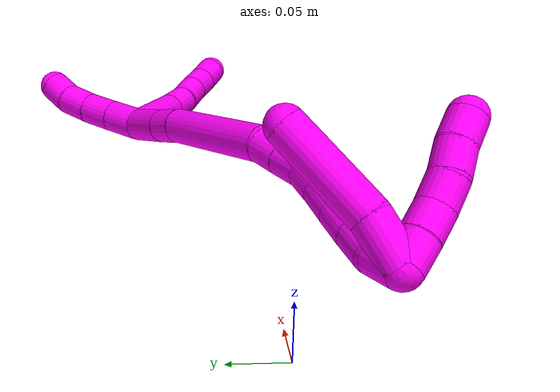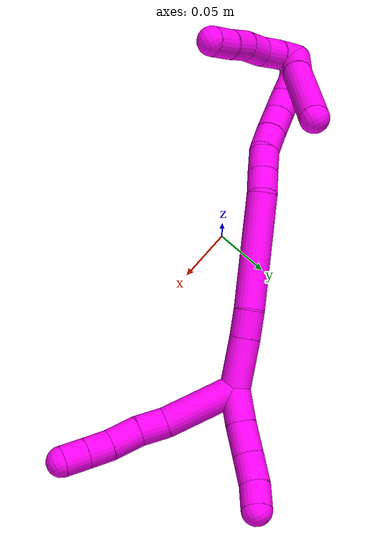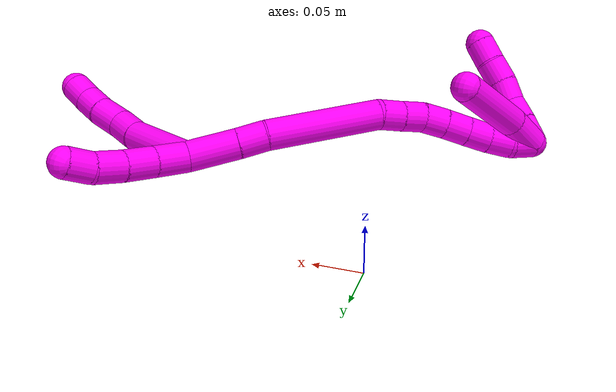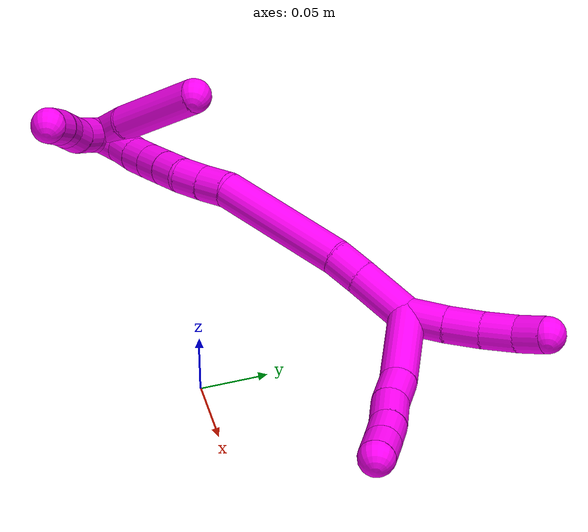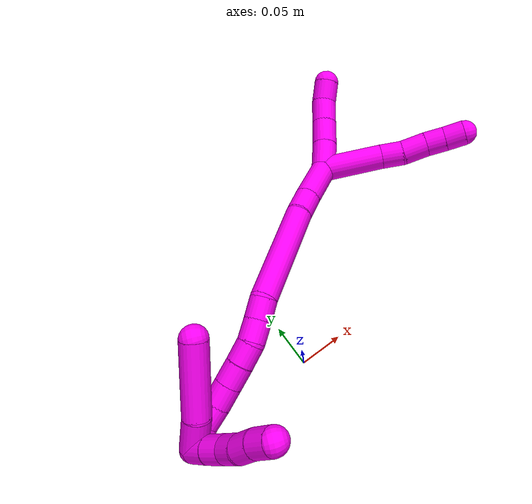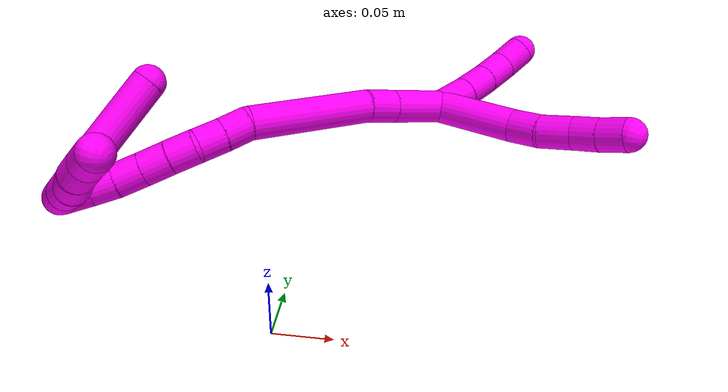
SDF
<sdf version="1.7">
 <world name="default">
  <model name="10">
   <static>0</static>
   <link name="10">
    <collision name="collision-cylinder-e_1_2_8">
     <pose>-0.001566 -0.00088 0.030563 0.0288 -0.051172 -0.000737</pose>
     <geometry><cylinder><radius>0.0125</radius><length>0.061232</length></cylinder></geometry>
     <surface>
      <friction><ode><mu>1.16</mu><mu2>1.16</mu2><slip1>0</slip1><slip2>0</slip2></ode></friction>
      <contact><ode><kp>1e+06</kp><kd>1</kd><max_vel>0</max_vel><min_depth>0.001</min_depth></ode></contact>
     </surface>
    </collision>
    <visual name="visual-cylinder-e_1_2_8">
     <pose>-0.001566 -0.00088 0.030563 0.0288 -0.051172 -0.000737</pose>
     <geometry><cylinder><radius>0.0125</radius><length>0.061232</length></cylinder></geometry>
     <material><ambient>1 0 0.964706 1</ambient></material>
    </visual>
    <collision name="collision-cylinder-e_2_8_9">
     <pose>-0.005546 -0.003193 0.072281 0.127685 -0.211476 -0.01357</pose>
     <geometry><cylinder><radius>0.0125</radius><length>0.023005</length></cylinder></geometry>
     <surface>
      <friction><ode><mu>1.16</mu><mu2>1.16</mu2><slip1>0</slip1><slip2>0</slip2></ode></friction>
      <contact><ode><kp>1e+06</kp><kd>1</kd><max_vel>0</max_vel><min_depth>0.001</min_depth></ode></contact>
     </surface>
    </collision>
    <visual name="visual-cylinder-e_2_8_9">
     <pose>-0.005546 -0.003193 0.072281 0.127685 -0.211476 -0.01357</pose>
     <geometry><cylinder><radius>0.0125</radius><length>0.023005</length></cylinder></geometry>
     <material><ambient>1 0 0.964706 1</ambient></material>
    </visual>
    <collision name="collision-cylinder-e_3_9_10">
     <pose>-0.010992 -0.003888 0.095702 -0.060015 -0.24187 0.007296</pose>
     <geometry><cylinder><radius>0.0125</radius><length>0.025315</length></cylinder></geometry>
     <surface>
      <friction><ode><mu>1.16</mu><mu2>1.16</mu2><slip1>0</slip1><slip2>0</slip2></ode></friction>
      <contact><ode><kp>1e+06</kp><kd>1</kd><max_vel>0</max_vel><min_depth>0.001</min_depth></ode></contact>
     </surface>
    </collision>
    <visual name="visual-cylinder-e_3_9_10">
     <pose>-0.010992 -0.003888 0.095702 -0.060015 -0.24187 0.007296</pose>
     <geometry><cylinder><radius>0.0125</radius><length>0.025315</length></cylinder></geometry>
     <material><ambient>1 0 0.964706 1</ambient></material>
    </visual>
    <collision name="collision-cylinder-e_4_10_11">
     <pose>-0.017121 -0.003619 0.117478 0.049215 -0.314462 -0.007804</pose>
     <geometry><cylinder><radius>0.0125</radius><length>0.020022</length></cylinder></geometry>
     <surface>
      <friction><ode><mu>1.16</mu><mu2>1.16</mu2><slip1>0</slip1><slip2>0</slip2></ode></friction>
      <contact><ode><kp>1e+06</kp><kd>1</kd><max_vel>0</max_vel><min_depth>0.001</min_depth></ode></contact>
     </surface>
    </collision>
    <visual name="visual-cylinder-e_4_10_11">
     <pose>-0.017121 -0.003619 0.117478 0.049215 -0.314462 -0.007804</pose>
     <geometry><cylinder><radius>0.0125</radius><length>0.020022</length></cylinder></geometry>
     <material><ambient>1 0 0.964706 1</ambient></material>
    </visual>
    <collision name="collision-cylinder-e_5_11_6">
     <pose>-0.024041 -0.004415 0.136451 0.034622 -0.383752 -0.006726</pose>
     <geometry><cylinder><radius>0.0125</radius><length>0.020426</length></cylinder></geometry>
     <surface>
      <friction><ode><mu>1.16</mu><mu2>1.16</mu2><slip1>0</slip1><slip2>0</slip2></ode></friction>
      <contact><ode><kp>1e+06</kp><kd>1</kd><max_vel>0</max_vel><min_depth>0.001</min_depth></ode></contact>
     </surface>
    </collision>
    <visual name="visual-cylinder-e_5_11_6">
     <pose>-0.024041 -0.004415 0.136451 0.034622 -0.383752 -0.006726</pose>
     <geometry><cylinder><radius>0.0125</radius><length>0.020426</length></cylinder></geometry>
     <material><ambient>1 0 0.964706 1</ambient></material>
    </visual>
    <collision name="collision-cylinder-e_1_2_12">
     <pose>0.001883 0.013371 0.004435 -1.25055 0.132868 -0.095985</pose>
     <geometry><cylinder><radius>0.0125</radius><length>0.028424</length></cylinder></geometry>
     <surface>
      <friction><ode><mu>1.16</mu><mu2>1.16</mu2><slip1>0</slip1><slip2>0</slip2></ode></friction>
      <contact><ode><kp>1e+06</kp><kd>1</kd><max_vel>0</max_vel><min_depth>0.001</min_depth></ode></contact>
     </surface>
    </collision>
    <visual name="visual-cylinder-e_1_2_12">
     <pose>0.001883 0.013371 0.004435 -1.25055 0.132868 -0.095985</pose>
     <geometry><cylinder><radius>0.0125</radius><length>0.028424</length></cylinder></geometry>
     <material><ambient>1 0 0.964706 1</ambient></material>
    </visual>
    <collision name="collision-cylinder-e_2_12_13">
     <pose>0.0051 0.039055 0.01224 -1.30356 0.10411 -0.079468</pose>
     <geometry><cylinder><radius>0.0125</radius><length>0.025672</length></cylinder></geometry>
     <surface>
      <friction><ode><mu>1.16</mu><mu2>1.16</mu2><slip1>0</slip1><slip2>0</slip2></ode></friction>
      <contact><ode><kp>1e+06</kp><kd>1</kd><max_vel>0</max_vel><min_depth>0.001</min_depth></ode></contact>
     </surface>
    </collision>
    <visual name="visual-cylinder-e_2_12_13">
     <pose>0.0051 0.039055 0.01224 -1.30356 0.10411 -0.079468</pose>
     <geometry><cylinder><radius>0.0125</radius><length>0.025672</length></cylinder></geometry>
     <material><ambient>1 0 0.964706 1</ambient></material>
    </visual>
    <collision name="collision-cylinder-e_3_13_14">
     <pose>0.006804 0.063162 0.018826 -1.30469 0.030289 -0.023139</pose>
     <geometry><cylinder><radius>0.0125</radius><length>0.02446</length></cylinder></geometry>
     <surface>
      <friction><ode><mu>1.16</mu><mu2>1.16</mu2><slip1>0</slip1><slip2>0</slip2></ode></friction>
      <contact><ode><kp>1e+06</kp><kd>1</kd><max_vel>0</max_vel><min_depth>0.001</min_depth></ode></contact>
     </surface>
    </collision>
    <visual name="visual-cylinder-e_3_13_14">
     <pose>0.006804 0.063162 0.018826 -1.30469 0.030289 -0.023139</pose>
     <geometry><cylinder><radius>0.0125</radius><length>0.02446</length></cylinder></geometry>
     <material><ambient>1 0 0.964706 1</ambient></material>
    </visual>
    <collision name="collision-cylinder-e_4_14_5">
     <pose>0.005093 0.084709 0.02598 -1.18697 -0.195311 0.131988</pose>
     <geometry><cylinder><radius>0.0125</radius><length>0.021444</length></cylinder></geometry>
     <surface>
      <friction><ode><mu>1.16</mu><mu2>1.16</mu2><slip1>0</slip1><slip2>0</slip2></ode></friction>
      <contact><ode><kp>1e+06</kp><kd>1</kd><max_vel>0</max_vel><min_depth>0.001</min_depth></ode></contact>
     </surface>
    </collision>
    <visual name="visual-cylinder-e_4_14_5">
     <pose>0.005093 0.084709 0.02598 -1.18697 -0.195311 0.131988</pose>
     <geometry><cylinder><radius>0.0125</radius><length>0.021444</length></cylinder></geometry>
     <material><ambient>1 0 0.964706 1</ambient></material>
    </visual>
    <collision name="collision-cylinder-e_1_2_15">
     <pose>-0.007213 -0.014574 -0.013197 2.30665 -0.3516 -0.761852</pose>
     <geometry><cylinder><radius>0.0125</radius><length>0.041885</length></cylinder></geometry>
     <surface>
      <friction><ode><mu>1.16</mu><mu2>1.16</mu2><slip1>0</slip1><slip2>0</slip2></ode></friction>
      <contact><ode><kp>1e+06</kp><kd>1</kd><max_vel>0</max_vel><min_depth>0.001</min_depth></ode></contact>
     </surface>
    </collision>
    <visual name="visual-cylinder-e_1_2_15">
     <pose>-0.007213 -0.014574 -0.013197 2.30665 -0.3516 -0.761852</pose>
     <geometry><cylinder><radius>0.0125</radius><length>0.041885</length></cylinder></geometry>
     <material><ambient>1 0 0.964706 1</ambient></material>
    </visual>
    <collision name="collision-cylinder-e_2_15_16">
     <pose>-0.018678 -0.037271 -0.033218 2.26951 -0.381241 -0.785248</pose>
     <geometry><cylinder><radius>0.0125</radius><length>0.022857</length></cylinder></geometry>
     <surface>
      <friction><ode><mu>1.16</mu><mu2>1.16</mu2><slip1>0</slip1><slip2>0</slip2></ode></friction>
      <contact><ode><kp>1e+06</kp><kd>1</kd><max_vel>0</max_vel><min_depth>0.001</min_depth></ode></contact>
     </surface>
    </collision>
    <visual name="visual-cylinder-e_2_15_16">
     <pose>-0.018678 -0.037271 -0.033218 2.26951 -0.381241 -0.785248</pose>
     <geometry><cylinder><radius>0.0125</radius><length>0.022857</length></cylinder></geometry>
     <material><ambient>1 0 0.964706 1</ambient></material>
    </visual>
    <collision name="collision-cylinder-e_3_16_17">
     <pose>-0.035073 -0.082393 -0.066978 2.20008 -0.259342 -0.501678</pose>
     <geometry><cylinder><radius>0.0125</radius><length>0.0947</length></cylinder></geometry>
     <surface>
      <friction><ode><mu>1.16</mu><mu2>1.16</mu2><slip1>0</slip1><slip2>0</slip2></ode></friction>
      <contact><ode><kp>1e+06</kp><kd>1</kd><max_vel>0</max_vel><min_depth>0.001</min_depth></ode></contact>
     </surface>
    </collision>
    <visual name="visual-cylinder-e_3_16_17">
     <pose>-0.035073 -0.082393 -0.066978 2.20008 -0.259342 -0.501678</pose>
     <geometry><cylinder><radius>0.0125</radius><length>0.0947</length></cylinder></geometry>
     <material><ambient>1 0 0.964706 1</ambient></material>
    </visual>
    <collision name="collision-cylinder-e_4_17_18">
     <pose>-0.047087 -0.128151 -0.098896 2.08792 0.01276 0.021937</pose>
     <geometry><cylinder><radius>0.0125</radius><length>0.020152</length></cylinder></geometry>
     <surface>
      <friction><ode><mu>1.16</mu><mu2>1.16</mu2><slip1>0</slip1><slip2>0</slip2></ode></friction>
      <contact><ode><kp>1e+06</kp><kd>1</kd><max_vel>0</max_vel><min_depth>0.001</min_depth></ode></contact>
     </surface>
    </collision>
    <visual name="visual-cylinder-e_4_17_18">
     <pose>-0.047087 -0.128151 -0.098896 2.08792 0.01276 0.021937</pose>
     <geometry><cylinder><radius>0.0125</radius><length>0.020152</length></cylinder></geometry>
     <material><ambient>1 0 0.964706 1</ambient></material>
    </visual>
    <collision name="collision-cylinder-e_5_18_19">
     <pose>-0.047142 -0.145535 -0.1091 2.11519 -0.018246 -0.032373</pose>
     <geometry><cylinder><radius>0.0125</radius><length>0.020172</length></cylinder></geometry>
     <surface>
      <friction><ode><mu>1.16</mu><mu2>1.16</mu2><slip1>0</slip1><slip2>0</slip2></ode></friction>
      <contact><ode><kp>1e+06</kp><kd>1</kd><max_vel>0</max_vel><min_depth>0.001</min_depth></ode></contact>
     </surface>
    </collision>
    <visual name="visual-cylinder-e_5_18_19">
     <pose>-0.047142 -0.145535 -0.1091 2.11519 -0.018246 -0.032373</pose>
     <geometry><cylinder><radius>0.0125</radius><length>0.020172</length></cylinder></geometry>
     <material><ambient>1 0 0.964706 1</ambient></material>
    </visual>
    <collision name="collision-cylinder-e_6_19_20">
     <pose>-0.045603 -0.161393 -0.121074 2.32191 0.172446 0.392795</pose>
     <geometry><cylinder><radius>0.0125</radius><length>0.020084</length></cylinder></geometry>
     <surface>
      <friction><ode><mu>1.16</mu><mu2>1.16</mu2><slip1>0</slip1><slip2>0</slip2></ode></friction>
      <contact><ode><kp>1e+06</kp><kd>1</kd><max_vel>0</max_vel><min_depth>0.001</min_depth></ode></contact>
     </surface>
    </collision>
    <visual name="visual-cylinder-e_6_19_20">
     <pose>-0.045603 -0.161393 -0.121074 2.32191 0.172446 0.392795</pose>
     <geometry><cylinder><radius>0.0125</radius><length>0.020084</length></cylinder></geometry>
     <material><ambient>1 0 0.964706 1</ambient></material>
    </visual>
    <collision name="collision-cylinder-e_7_20_21">
     <pose>-0.041728 -0.175608 -0.134719 2.34965 0.21592 0.507339</pose>
     <geometry><cylinder><radius>0.0125</radius><length>0.020092</length></cylinder></geometry>
     <surface>
      <friction><ode><mu>1.16</mu><mu2>1.16</mu2><slip1>0</slip1><slip2>0</slip2></ode></friction>
      <contact><ode><kp>1e+06</kp><kd>1</kd><max_vel>0</max_vel><min_depth>0.001</min_depth></ode></contact>
     </surface>
    </collision>
    <visual name="visual-cylinder-e_7_20_21">
     <pose>-0.041728 -0.175608 -0.134719 2.34965 0.21592 0.507339</pose>
     <geometry><cylinder><radius>0.0125</radius><length>0.020092</length></cylinder></geometry>
     <material><ambient>1 0 0.964706 1</ambient></material>
    </visual>
    <collision name="collision-cylinder-e_8_21_22">
     <pose>-0.037603 -0.189597 -0.148509 2.34846 0.197981 0.465735</pose>
     <geometry><cylinder><radius>0.0125</radius><length>0.020054</length></cylinder></geometry>
     <surface>
      <friction><ode><mu>1.16</mu><mu2>1.16</mu2><slip1>0</slip1><slip2>0</slip2></ode></friction>
      <contact><ode><kp>1e+06</kp><kd>1</kd><max_vel>0</max_vel><min_depth>0.001</min_depth></ode></contact>
     </surface>
    </collision>
    <visual name="visual-cylinder-e_8_21_22">
     <pose>-0.037603 -0.189597 -0.148509 2.34846 0.197981 0.465735</pose>
     <geometry><cylinder><radius>0.0125</radius><length>0.020054</length></cylinder></geometry>
     <material><ambient>1 0 0.964706 1</ambient></material>
    </visual>
    <collision name="collision-cylinder-e_9_22_23">
     <pose>-0.034484 -0.203271 -0.162771 2.40567 0.114916 0.296224</pose>
     <geometry><cylinder><radius>0.0125</radius><length>0.020001</length></cylinder></geometry>
     <surface>
      <friction><ode><mu>1.16</mu><mu2>1.16</mu2><slip1>0</slip1><slip2>0</slip2></ode></friction>
      <contact><ode><kp>1e+06</kp><kd>1</kd><max_vel>0</max_vel><min_depth>0.001</min_depth></ode></contact>
     </surface>
    </collision>
    <visual name="visual-cylinder-e_9_22_23">
     <pose>-0.034484 -0.203271 -0.162771 2.40567 0.114916 0.296224</pose>
     <geometry><cylinder><radius>0.0125</radius><length>0.020001</length></cylinder></geometry>
     <material><ambient>1 0 0.964706 1</ambient></material>
    </visual>
    <collision name="collision-cylinder-e_10_23_1">
     <pose>-0.034453 -0.21802 -0.175921 2.19236 -0.111759 -0.216894</pose>
     <geometry><cylinder><radius>0.0125</radius><length>0.020002</length></cylinder></geometry>
     <surface>
      <friction><ode><mu>1.16</mu><mu2>1.16</mu2><slip1>0</slip1><slip2>0</slip2></ode></friction>
      <contact><ode><kp>1e+06</kp><kd>1</kd><max_vel>0</max_vel><min_depth>0.001</min_depth></ode></contact>
     </surface>
    </collision>
    <visual name="visual-cylinder-e_10_23_1">
     <pose>-0.034453 -0.21802 -0.175921 2.19236 -0.111759 -0.216894</pose>
     <geometry><cylinder><radius>0.0125</radius><length>0.020002</length></cylinder></geometry>
     <material><ambient>1 0 0.964706 1</ambient></material>
    </visual>
    <collision name="collision-cylinder-e_1_1_24">
     <pose>-0.042642 -0.227749 -0.174836 0.235541 -0.785778 -0.097992</pose>
     <geometry><cylinder><radius>0.0125</radius><length>0.02</length></cylinder></geometry>
     <surface>
      <friction><ode><mu>1.16</mu><mu2>1.16</mu2><slip1>0</slip1><slip2>0</slip2></ode></friction>
      <contact><ode><kp>1e+06</kp><kd>1</kd><max_vel>0</max_vel><min_depth>0.001</min_depth></ode></contact>
     </surface>
    </collision>
    <visual name="visual-cylinder-e_1_1_24">
     <pose>-0.042642 -0.227749 -0.174836 0.235541 -0.785778 -0.097992</pose>
     <geometry><cylinder><radius>0.0125</radius><length>0.02</length></cylinder></geometry>
     <material><ambient>1 0 0.964706 1</ambient></material>
    </visual>
    <collision name="collision-cylinder-e_2_24_25">
     <pose>-0.056455 -0.230697 -0.160689 0.176705 -0.739451 -0.068633</pose>
     <geometry><cylinder><radius>0.0125</radius><length>0.02</length></cylinder></geometry>
     <surface>
      <friction><ode><mu>1.16</mu><mu2>1.16</mu2><slip1>0</slip1><slip2>0</slip2></ode></friction>
      <contact><ode><kp>1e+06</kp><kd>1</kd><max_vel>0</max_vel><min_depth>0.001</min_depth></ode></contact>
     </surface>
    </collision>
    <visual name="visual-cylinder-e_2_24_25">
     <pose>-0.056455 -0.230697 -0.160689 0.176705 -0.739451 -0.068633</pose>
     <geometry><cylinder><radius>0.0125</radius><length>0.02</length></cylinder></geometry>
     <material><ambient>1 0 0.964706 1</ambient></material>
    </visual>
    <collision name="collision-cylinder-e_3_25_26">
     <pose>-0.071371 -0.232602 -0.147692 0.105513 -0.957535 -0.054803</pose>
     <geometry><cylinder><radius>0.0125</radius><length>0.02</length></cylinder></geometry>
     <surface>
      <friction><ode><mu>1.16</mu><mu2>1.16</mu2><slip1>0</slip1><slip2>0</slip2></ode></friction>
      <contact><ode><kp>1e+06</kp><kd>1</kd><max_vel>0</max_vel><min_depth>0.001</min_depth></ode></contact>
     </surface>
    </collision>
    <visual name="visual-cylinder-e_3_25_26">
     <pose>-0.071371 -0.232602 -0.147692 0.105513 -0.957535 -0.054803</pose>
     <geometry><cylinder><radius>0.0125</radius><length>0.02</length></cylinder></geometry>
     <material><ambient>1 0 0.964706 1</ambient></material>
    </visual>
    <collision name="collision-cylinder-e_4_26_27">
     <pose>-0.087043 -0.232203 -0.135425 -0.152414 -0.847198 0.068829</pose>
     <geometry><cylinder><radius>0.0125</radius><length>0.02</length></cylinder></geometry>
     <surface>
      <friction><ode><mu>1.16</mu><mu2>1.16</mu2><slip1>0</slip1><slip2>0</slip2></ode></friction>
      <contact><ode><kp>1e+06</kp><kd>1</kd><max_vel>0</max_vel><min_depth>0.001</min_depth></ode></contact>
     </surface>
    </collision>
    <visual name="visual-cylinder-e_4_26_27">
     <pose>-0.087043 -0.232203 -0.135425 -0.152414 -0.847198 0.068829</pose>
     <geometry><cylinder><radius>0.0125</radius><length>0.02</length></cylinder></geometry>
     <material><ambient>1 0 0.964706 1</ambient></material>
    </visual>
    <collision name="collision-cylinder-e_5_27_4">
     <pose>-0.101871 -0.231607 -0.122094 0.060254 -0.8232 -0.02631</pose>
     <geometry><cylinder><radius>0.0125</radius><length>0.02</length></cylinder></geometry>
     <surface>
      <friction><ode><mu>1.16</mu><mu2>1.16</mu2><slip1>0</slip1><slip2>0</slip2></ode></friction>
      <contact><ode><kp>1e+06</kp><kd>1</kd><max_vel>0</max_vel><min_depth>0.001</min_depth></ode></contact>
     </surface>
    </collision>
    <visual name="visual-cylinder-e_5_27_4">
     <pose>-0.101871 -0.231607 -0.122094 0.060254 -0.8232 -0.02631</pose>
     <geometry><cylinder><radius>0.0125</radius><length>0.02</length></cylinder></geometry>
     <material><ambient>1 0 0.964706 1</ambient></material>
    </visual>
    <collision name="collision-cylinder-e_1_1_28">
     <pose>-0.044239 -0.213832 -0.176771 -1.18815 -0.580356 0.398059</pose>
     <geometry><cylinder><radius>0.0125</radius><length>0.031627</length></cylinder></geometry>
     <surface>
      <friction><ode><mu>1.16</mu><mu2>1.16</mu2><slip1>0</slip1><slip2>0</slip2></ode></friction>
      <contact><ode><kp>1e+06</kp><kd>1</kd><max_vel>0</max_vel><min_depth>0.001</min_depth></ode></contact>
     </surface>
    </collision>
    <visual name="visual-cylinder-e_1_1_28">
     <pose>-0.044239 -0.213832 -0.176771 -1.18815 -0.580356 0.398059</pose>
     <geometry><cylinder><radius>0.0125</radius><length>0.031627</length></cylinder></geometry>
     <material><ambient>1 0 0.964706 1</ambient></material>
    </visual>
    <collision name="collision-cylinder-e_2_28_3">
     <pose>-0.066858 -0.171226 -0.164501 -1.33365 -0.420269 0.332648</pose>
     <geometry><cylinder><radius>0.0125</radius><length>0.068373</length></cylinder></geometry>
     <surface>
      <friction><ode><mu>1.16</mu><mu2>1.16</mu2><slip1>0</slip1><slip2>0</slip2></ode></friction>
      <contact><ode><kp>1e+06</kp><kd>1</kd><max_vel>0</max_vel><min_depth>0.001</min_depth></ode></contact>
     </surface>
    </collision>
    <visual name="visual-cylinder-e_2_28_3">
     <pose>-0.066858 -0.171226 -0.164501 -1.33365 -0.420269 0.332648</pose>
     <geometry><cylinder><radius>0.0125</radius><length>0.068373</length></cylinder></geometry>
     <material><ambient>1 0 0.964706 1</ambient></material>
    </visual>
    <collision name="collision-sphere-3">
     <pose>-0.080807 -0.140887 -0.157168 0 -0 0</pose>
     <geometry><sphere><radius>0.0125</radius></sphere></geometry>
     <surface>
      <friction><ode><mu>1.16</mu><mu2>1.16</mu2><slip1>0</slip1><slip2>0</slip2></ode></friction>
      <contact><ode><kp>1e+06</kp><kd>1</kd><max_vel>0</max_vel><min_depth>0.001</min_depth></ode></contact>
     </surface>
    </collision>
    <visual name="visual-sphere-3">
     <pose>-0.080807 -0.140887 -0.157168 0 -0 0</pose>
     <geometry><sphere><radius>0.0125</radius></sphere></geometry>
     <material><ambient>1 0 0.964706 1</ambient></material>
    </visual>
    <collision name="collision-sphere-28">
     <pose>-0.05291 -0.201564 -0.171833 0 -0 0</pose>
     <geometry><sphere><radius>0.0125</radius></sphere></geometry>
     <surface>
      <friction><ode><mu>1.16</mu><mu2>1.16</mu2><slip1>0</slip1><slip2>0</slip2></ode></friction>
      <contact><ode><kp>1e+06</kp><kd>1</kd><max_vel>0</max_vel><min_depth>0.001</min_depth></ode></contact>
     </surface>
    </collision>
    <visual name="visual-sphere-28">
     <pose>-0.05291 -0.201564 -0.171833 0 -0 0</pose>
     <geometry><sphere><radius>0.0125</radius></sphere></geometry>
     <material><ambient>1 0 0.964706 1</ambient></material>
    </visual>
    <collision name="collision-sphere-4">
     <pose>-0.109204 -0.232017 -0.115308 0 -0 0</pose>
     <geometry><sphere><radius>0.0125</radius></sphere></geometry>
     <surface>
      <friction><ode><mu>1.16</mu><mu2>1.16</mu2><slip1>0</slip1><slip2>0</slip2></ode></friction>
      <contact><ode><kp>1e+06</kp><kd>1</kd><max_vel>0</max_vel><min_depth>0.001</min_depth></ode></contact>
     </surface>
    </collision>
    <visual name="visual-sphere-4">
     <pose>-0.109204 -0.232017 -0.115308 0 -0 0</pose>
     <geometry><sphere><radius>0.0125</radius></sphere></geometry>
     <material><ambient>1 0 0.964706 1</ambient></material>
    </visual>
    <collision name="collision-sphere-27">
     <pose>-0.094537 -0.231198 -0.128881 0 -0 0</pose>
     <geometry><sphere><radius>0.0125</radius></sphere></geometry>
     <surface>
      <friction><ode><mu>1.16</mu><mu2>1.16</mu2><slip1>0</slip1><slip2>0</slip2></ode></friction>
      <contact><ode><kp>1e+06</kp><kd>1</kd><max_vel>0</max_vel><min_depth>0.001</min_depth></ode></contact>
     </surface>
    </collision>
    <visual name="visual-sphere-27">
     <pose>-0.094537 -0.231198 -0.128881 0 -0 0</pose>
     <geometry><sphere><radius>0.0125</radius></sphere></geometry>
     <material><ambient>1 0 0.964706 1</ambient></material>
    </visual>
    <collision name="collision-sphere-26">
     <pose>-0.079549 -0.233208 -0.141969 0 -0 0</pose>
     <geometry><sphere><radius>0.0125</radius></sphere></geometry>
     <surface>
      <friction><ode><mu>1.16</mu><mu2>1.16</mu2><slip1>0</slip1><slip2>0</slip2></ode></friction>
      <contact><ode><kp>1e+06</kp><kd>1</kd><max_vel>0</max_vel><min_depth>0.001</min_depth></ode></contact>
     </surface>
    </collision>
    <visual name="visual-sphere-26">
     <pose>-0.079549 -0.233208 -0.141969 0 -0 0</pose>
     <geometry><sphere><radius>0.0125</radius></sphere></geometry>
     <material><ambient>1 0 0.964706 1</ambient></material>
    </visual>
    <collision name="collision-sphere-25">
     <pose>-0.063193 -0.231996 -0.153416 0 -0 0</pose>
     <geometry><sphere><radius>0.0125</radius></sphere></geometry>
     <surface>
      <friction><ode><mu>1.16</mu><mu2>1.16</mu2><slip1>0</slip1><slip2>0</slip2></ode></friction>
      <contact><ode><kp>1e+06</kp><kd>1</kd><max_vel>0</max_vel><min_depth>0.001</min_depth></ode></contact>
     </surface>
    </collision>
    <visual name="visual-sphere-25">
     <pose>-0.063193 -0.231996 -0.153416 0 -0 0</pose>
     <geometry><sphere><radius>0.0125</radius></sphere></geometry>
     <material><ambient>1 0 0.964706 1</ambient></material>
    </visual>
    <collision name="collision-sphere-24">
     <pose>-0.049716 -0.229398 -0.167962 0 -0 0</pose>
     <geometry><sphere><radius>0.0125</radius></sphere></geometry>
     <surface>
      <friction><ode><mu>1.16</mu><mu2>1.16</mu2><slip1>0</slip1><slip2>0</slip2></ode></friction>
      <contact><ode><kp>1e+06</kp><kd>1</kd><max_vel>0</max_vel><min_depth>0.001</min_depth></ode></contact>
     </surface>
    </collision>
    <visual name="visual-sphere-24">
     <pose>-0.049716 -0.229398 -0.167962 0 -0 0</pose>
     <geometry><sphere><radius>0.0125</radius></sphere></geometry>
     <material><ambient>1 0 0.964706 1</ambient></material>
    </visual>
    <collision name="collision-sphere-1">
     <pose>-0.035568 -0.226099 -0.181709 0 -0 0</pose>
     <geometry><sphere><radius>0.0125</radius></sphere></geometry>
     <surface>
      <friction><ode><mu>1.16</mu><mu2>1.16</mu2><slip1>0</slip1><slip2>0</slip2></ode></friction>
      <contact><ode><kp>1e+06</kp><kd>1</kd><max_vel>0</max_vel><min_depth>0.001</min_depth></ode></contact>
     </surface>
    </collision>
    <visual name="visual-sphere-1">
     <pose>-0.035568 -0.226099 -0.181709 0 -0 0</pose>
     <geometry><sphere><radius>0.0125</radius></sphere></geometry>
     <material><ambient>1 0 0.964706 1</ambient></material>
    </visual>
    <collision name="collision-sphere-23">
     <pose>-0.033337 -0.20994 -0.170134 0 -0 0</pose>
     <geometry><sphere><radius>0.0125</radius></sphere></geometry>
     <surface>
      <friction><ode><mu>1.16</mu><mu2>1.16</mu2><slip1>0</slip1><slip2>0</slip2></ode></friction>
      <contact><ode><kp>1e+06</kp><kd>1</kd><max_vel>0</max_vel><min_depth>0.001</min_depth></ode></contact>
     </surface>
    </collision>
    <visual name="visual-sphere-23">
     <pose>-0.033337 -0.20994 -0.170134 0 -0 0</pose>
     <geometry><sphere><radius>0.0125</radius></sphere></geometry>
     <material><ambient>1 0 0.964706 1</ambient></material>
    </visual>
    <collision name="collision-sphere-22">
     <pose>-0.035631 -0.196603 -0.155407 0 -0 0</pose>
     <geometry><sphere><radius>0.0125</radius></sphere></geometry>
     <surface>
      <friction><ode><mu>1.16</mu><mu2>1.16</mu2><slip1>0</slip1><slip2>0</slip2></ode></friction>
      <contact><ode><kp>1e+06</kp><kd>1</kd><max_vel>0</max_vel><min_depth>0.001</min_depth></ode></contact>
     </surface>
    </collision>
    <visual name="visual-sphere-22">
     <pose>-0.035631 -0.196603 -0.155407 0 -0 0</pose>
     <geometry><sphere><radius>0.0125</radius></sphere></geometry>
     <material><ambient>1 0 0.964706 1</ambient></material>
    </visual>
    <collision name="collision-sphere-21">
     <pose>-0.039575 -0.182592 -0.141612 0 -0 0</pose>
     <geometry><sphere><radius>0.0125</radius></sphere></geometry>
     <surface>
      <friction><ode><mu>1.16</mu><mu2>1.16</mu2><slip1>0</slip1><slip2>0</slip2></ode></friction>
      <contact><ode><kp>1e+06</kp><kd>1</kd><max_vel>0</max_vel><min_depth>0.001</min_depth></ode></contact>
     </surface>
    </collision>
    <visual name="visual-sphere-21">
     <pose>-0.039575 -0.182592 -0.141612 0 -0 0</pose>
     <geometry><sphere><radius>0.0125</radius></sphere></geometry>
     <material><ambient>1 0 0.964706 1</ambient></material>
    </visual>
    <collision name="collision-sphere-6">
     <pose>-0.027865 -0.004743 0.145916 0 -0 0</pose>
     <geometry><sphere><radius>0.0125</radius></sphere></geometry>
     <surface>
      <friction><ode><mu>1.16</mu><mu2>1.16</mu2><slip1>0</slip1><slip2>0</slip2></ode></friction>
      <contact><ode><kp>1e+06</kp><kd>1</kd><max_vel>0</max_vel><min_depth>0.001</min_depth></ode></contact>
     </surface>
    </collision>
    <visual name="visual-sphere-6">
     <pose>-0.027865 -0.004743 0.145916 0 -0 0</pose>
     <geometry><sphere><radius>0.0125</radius></sphere></geometry>
     <material><ambient>1 0 0.964706 1</ambient></material>
    </visual>
    <collision name="collision-sphere-11">
     <pose>-0.020217 -0.004088 0.126987 0 -0 0</pose>
     <geometry><sphere><radius>0.0125</radius></sphere></geometry>
     <surface>
      <friction><ode><mu>1.16</mu><mu2>1.16</mu2><slip1>0</slip1><slip2>0</slip2></ode></friction>
      <contact><ode><kp>1e+06</kp><kd>1</kd><max_vel>0</max_vel><min_depth>0.001</min_depth></ode></contact>
     </surface>
    </collision>
    <visual name="visual-sphere-11">
     <pose>-0.020217 -0.004088 0.126987 0 -0 0</pose>
     <geometry><sphere><radius>0.0125</radius></sphere></geometry>
     <material><ambient>1 0 0.964706 1</ambient></material>
    </visual>
    <collision name="collision-sphere-10">
     <pose>-0.014024 -0.003151 0.10797 0 -0 0</pose>
     <geometry><sphere><radius>0.0125</radius></sphere></geometry>
     <surface>
      <friction><ode><mu>1.16</mu><mu2>1.16</mu2><slip1>0</slip1><slip2>0</slip2></ode></friction>
      <contact><ode><kp>1e+06</kp><kd>1</kd><max_vel>0</max_vel><min_depth>0.001</min_depth></ode></contact>
     </surface>
    </collision>
    <visual name="visual-sphere-10">
     <pose>-0.014024 -0.003151 0.10797 0 -0 0</pose>
     <geometry><sphere><radius>0.0125</radius></sphere></geometry>
     <material><ambient>1 0 0.964706 1</ambient></material>
    </visual>
    <collision name="collision-sphere-9">
     <pose>-0.007961 -0.004625 0.083435 0 -0 0</pose>
     <geometry><sphere><radius>0.0125</radius></sphere></geometry>
     <surface>
      <friction><ode><mu>1.16</mu><mu2>1.16</mu2><slip1>0</slip1><slip2>0</slip2></ode></friction>
      <contact><ode><kp>1e+06</kp><kd>1</kd><max_vel>0</max_vel><min_depth>0.001</min_depth></ode></contact>
     </surface>
    </collision>
    <visual name="visual-sphere-9">
     <pose>-0.007961 -0.004625 0.083435 0 -0 0</pose>
     <geometry><sphere><radius>0.0125</radius></sphere></geometry>
     <material><ambient>1 0 0.964706 1</ambient></material>
    </visual>
    <collision name="collision-sphere-2">
     <geometry><sphere><radius>0.0125</radius></sphere></geometry>
     <surface>
      <friction><ode><mu>1.16</mu><mu2>1.16</mu2><slip1>0</slip1><slip2>0</slip2></ode></friction>
      <contact><ode><kp>1e+06</kp><kd>1</kd><max_vel>0</max_vel><min_depth>0.001</min_depth></ode></contact>
     </surface>
    </collision>
    <visual name="visual-sphere-2">
     <geometry><sphere><radius>0.0125</radius></sphere></geometry>
     <material><ambient>1 0 0.964706 1</ambient></material>
    </visual>
    <collision name="collision-sphere-19">
     <pose>-0.047326 -0.154162 -0.114322 0 -0 0</pose>
     <geometry><sphere><radius>0.0125</radius></sphere></geometry>
     <surface>
      <friction><ode><mu>1.16</mu><mu2>1.16</mu2><slip1>0</slip1><slip2>0</slip2></ode></friction>
      <contact><ode><kp>1e+06</kp><kd>1</kd><max_vel>0</max_vel><min_depth>0.001</min_depth></ode></contact>
     </surface>
    </collision>
    <visual name="visual-sphere-19">
     <pose>-0.047326 -0.154162 -0.114322 0 -0 0</pose>
     <geometry><sphere><radius>0.0125</radius></sphere></geometry>
     <material><ambient>1 0 0.964706 1</ambient></material>
    </visual>
    <collision name="collision-sphere-8">
     <pose>-0.003132 -0.001761 0.061126 0 -0 0</pose>
     <geometry><sphere><radius>0.0125</radius></sphere></geometry>
     <surface>
      <friction><ode><mu>1.16</mu><mu2>1.16</mu2><slip1>0</slip1><slip2>0</slip2></ode></friction>
      <contact><ode><kp>1e+06</kp><kd>1</kd><max_vel>0</max_vel><min_depth>0.001</min_depth></ode></contact>
     </surface>
    </collision>
    <visual name="visual-sphere-8">
     <pose>-0.003132 -0.001761 0.061126 0 -0 0</pose>
     <geometry><sphere><radius>0.0125</radius></sphere></geometry>
     <material><ambient>1 0 0.964706 1</ambient></material>
    </visual>
    <collision name="collision-sphere-12">
     <pose>0.003766 0.026742 0.008869 0 -0 0</pose>
     <geometry><sphere><radius>0.0125</radius></sphere></geometry>
     <surface>
      <friction><ode><mu>1.16</mu><mu2>1.16</mu2><slip1>0</slip1><slip2>0</slip2></ode></friction>
      <contact><ode><kp>1e+06</kp><kd>1</kd><max_vel>0</max_vel><min_depth>0.001</min_depth></ode></contact>
     </surface>
    </collision>
    <visual name="visual-sphere-12">
     <pose>0.003766 0.026742 0.008869 0 -0 0</pose>
     <geometry><sphere><radius>0.0125</radius></sphere></geometry>
     <material><ambient>1 0 0.964706 1</ambient></material>
    </visual>
    <collision name="collision-sphere-13">
     <pose>0.006433 0.051368 0.015611 0 -0 0</pose>
     <geometry><sphere><radius>0.0125</radius></sphere></geometry>
     <surface>
      <friction><ode><mu>1.16</mu><mu2>1.16</mu2><slip1>0</slip1><slip2>0</slip2></ode></friction>
      <contact><ode><kp>1e+06</kp><kd>1</kd><max_vel>0</max_vel><min_depth>0.001</min_depth></ode></contact>
     </surface>
    </collision>
    <visual name="visual-sphere-13">
     <pose>0.006433 0.051368 0.015611 0 -0 0</pose>
     <geometry><sphere><radius>0.0125</radius></sphere></geometry>
     <material><ambient>1 0 0.964706 1</ambient></material>
    </visual>
    <collision name="collision-sphere-14">
     <pose>0.007174 0.074956 0.022041 0 -0 0</pose>
     <geometry><sphere><radius>0.0125</radius></sphere></geometry>
     <surface>
      <friction><ode><mu>1.16</mu><mu2>1.16</mu2><slip1>0</slip1><slip2>0</slip2></ode></friction>
      <contact><ode><kp>1e+06</kp><kd>1</kd><max_vel>0</max_vel><min_depth>0.001</min_depth></ode></contact>
     </surface>
    </collision>
    <visual name="visual-sphere-14">
     <pose>0.007174 0.074956 0.022041 0 -0 0</pose>
     <geometry><sphere><radius>0.0125</radius></sphere></geometry>
     <material><ambient>1 0 0.964706 1</ambient></material>
    </visual>
    <collision name="collision-sphere-5">
     <pose>0.003012 0.094462 0.029918 0 -0 0</pose>
     <geometry><sphere><radius>0.0125</radius></sphere></geometry>
     <surface>
      <friction><ode><mu>1.16</mu><mu2>1.16</mu2><slip1>0</slip1><slip2>0</slip2></ode></friction>
      <contact><ode><kp>1e+06</kp><kd>1</kd><max_vel>0</max_vel><min_depth>0.001</min_depth></ode></contact>
     </surface>
    </collision>
    <visual name="visual-sphere-5">
     <pose>0.003012 0.094462 0.029918 0 -0 0</pose>
     <geometry><sphere><radius>0.0125</radius></sphere></geometry>
     <material><ambient>1 0 0.964706 1</ambient></material>
    </visual>
    <collision name="collision-sphere-15">
     <pose>-0.014425 -0.029148 -0.026394 0 -0 0</pose>
     <geometry><sphere><radius>0.0125</radius></sphere></geometry>
     <surface>
      <friction><ode><mu>1.16</mu><mu2>1.16</mu2><slip1>0</slip1><slip2>0</slip2></ode></friction>
      <contact><ode><kp>1e+06</kp><kd>1</kd><max_vel>0</max_vel><min_depth>0.001</min_depth></ode></contact>
     </surface>
    </collision>
    <visual name="visual-sphere-15">
     <pose>-0.014425 -0.029148 -0.026394 0 -0 0</pose>
     <geometry><sphere><radius>0.0125</radius></sphere></geometry>
     <material><ambient>1 0 0.964706 1</ambient></material>
    </visual>
    <collision name="collision-sphere-16">
     <pose>-0.02293 -0.045393 -0.040041 0 -0 0</pose>
     <geometry><sphere><radius>0.0125</radius></sphere></geometry>
     <surface>
      <friction><ode><mu>1.16</mu><mu2>1.16</mu2><slip1>0</slip1><slip2>0</slip2></ode></friction>
      <contact><ode><kp>1e+06</kp><kd>1</kd><max_vel>0</max_vel><min_depth>0.001</min_depth></ode></contact>
     </surface>
    </collision>
    <visual name="visual-sphere-16">
     <pose>-0.02293 -0.045393 -0.040041 0 -0 0</pose>
     <geometry><sphere><radius>0.0125</radius></sphere></geometry>
     <material><ambient>1 0 0.964706 1</ambient></material>
    </visual>
    <collision name="collision-sphere-17">
     <pose>-0.047215 -0.119393 -0.093915 0 -0 0</pose>
     <geometry><sphere><radius>0.0125</radius></sphere></geometry>
     <surface>
      <friction><ode><mu>1.16</mu><mu2>1.16</mu2><slip1>0</slip1><slip2>0</slip2></ode></friction>
      <contact><ode><kp>1e+06</kp><kd>1</kd><max_vel>0</max_vel><min_depth>0.001</min_depth></ode></contact>
     </surface>
    </collision>
    <visual name="visual-sphere-17">
     <pose>-0.047215 -0.119393 -0.093915 0 -0 0</pose>
     <geometry><sphere><radius>0.0125</radius></sphere></geometry>
     <material><ambient>1 0 0.964706 1</ambient></material>
    </visual>
    <collision name="collision-sphere-18">
     <pose>-0.046958 -0.136909 -0.103877 0 -0 0</pose>
     <geometry><sphere><radius>0.0125</radius></sphere></geometry>
     <surface>
      <friction><ode><mu>1.16</mu><mu2>1.16</mu2><slip1>0</slip1><slip2>0</slip2></ode></friction>
      <contact><ode><kp>1e+06</kp><kd>1</kd><max_vel>0</max_vel><min_depth>0.001</min_depth></ode></contact>
     </surface>
    </collision>
    <visual name="visual-sphere-18">
     <pose>-0.046958 -0.136909 -0.103877 0 -0 0</pose>
     <geometry><sphere><radius>0.0125</radius></sphere></geometry>
     <material><ambient>1 0 0.964706 1</ambient></material>
    </visual>
    <collision name="collision-sphere-20">
     <pose>-0.04388 -0.168624 -0.127826 0 -0 0</pose>
     <geometry><sphere><radius>0.0125</radius></sphere></geometry>
     <surface>
      <friction><ode><mu>1.16</mu><mu2>1.16</mu2><slip1>0</slip1><slip2>0</slip2></ode></friction>
      <contact><ode><kp>1e+06</kp><kd>1</kd><max_vel>0</max_vel><min_depth>0.001</min_depth></ode></contact>
     </surface>
    </collision>
    <visual name="visual-sphere-20">
     <pose>-0.04388 -0.168624 -0.127826 0 -0 0</pose>
     <geometry><sphere><radius>0.0125</radius></sphere></geometry>
     <material><ambient>1 0 0.964706 1</ambient></material>
    </visual>
    <inertial>
     <pose>-0.031828 -0.094658 -0.061118 0 -0 0</pose>
     <mass>0.75</mass>
     <inertia>
      <ixx>0.000106</ixx>
      <ixy>0</ixy>
      <ixz>0</ixz>
      <iyy>-2.2e-05</iyy>
      <iyz>0</iyz>
      <izz>8.7e-05</izz>
     </inertia>
    </inertial>
   </link>
   <pose>0.117581 0.113339 0.152187 1.74499 1.30939 1.37643</pose>
  </model>
 </world>
</sdf>
